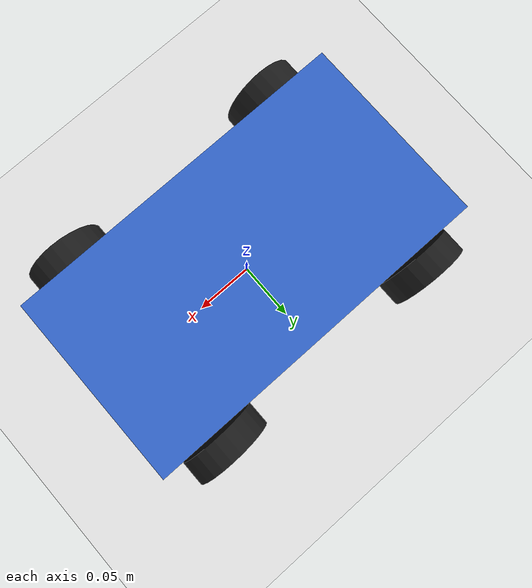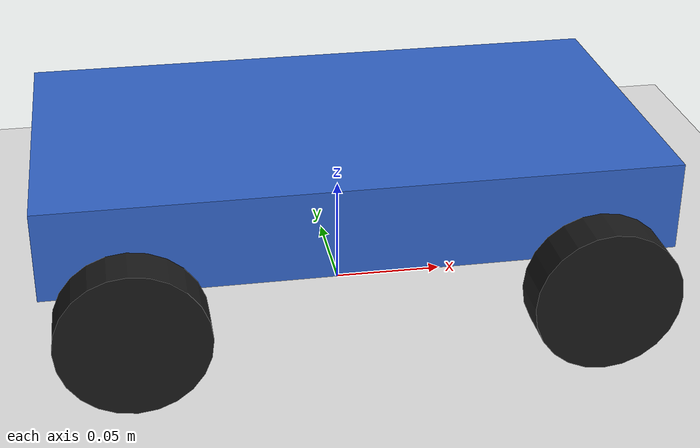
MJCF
<mujoco model="ackermann_robot">
  <compiler angle="radian"/>

  <option timestep="0.002" gravity="0 0 -9.81"/>

  <worldbody>
    <light name="top" pos="0 0 3" dir="0 0 -1" diffuse=".6 .6 .6" specular="0.1 0.1 0.1"/>
    <geom name="floor" pos="0 0 0" size="40 40 .1" type="plane" rgba="0.9 0.9 0.9 1"/>

    <!-- Chassis box: length=0.275, width=0.15, height=0.1 -->
    <!-- size uses half-dimensions -->
    <body name="chassis" pos="0 0 0.065">
      <geom name="chassis_geom" type="box" size="0.1375 0.075 0.02" rgba="0.2 0.4 0.8 1" mass="10"/>

      <!-- Rear wheels (with encoders) at x=-0.12, y=±0.06, z=0.065; radius=0.065 -->
      <body name="rear_left" pos="-0.10 0.09 -0.03">
        <geom name="rear_left_wheel_geom" type="cylinder" size="0.0325 0.01" euler="1.57079632679 0 0" rgba="0.1 0.1 0.1 1"/>
        <joint name="rear_left_wheel" type="hinge" axis="0 1 0" damping="0.05"/>
      </body>
      <body name="rear_right" pos="-0.10 -0.09 -0.03">
        <geom name="rear_right_wheel_geom" type="cylinder" size="0.0325 0.01" euler="1.57079632679 0 0" rgba="0.1 0.1 0.1 1"/>
        <joint name="rear_right_wheel" type="hinge" axis="0 1 0" damping="0.05"/>
      </body>

      <!-- Front wheels with steering at x=+0.12, y=±0.06, z=0.065; radius=0.065 -->
      <body name="front_left_steer" pos="0.10 0.09 -0.03">
        <inertial pos="0 0 0" mass="0.1" diaginertia="1e-4 1e-4 1e-4"/>
        <joint name="front_left_steer" type="hinge" axis="0 1 0" range="-0.6 0.6" damping="0.05"/>
        <body name="front_left" pos="0 0 0">
          <geom name="front_left_wheel_geom" type="cylinder" size="0.0325 0.01" euler="1.57079632679 0 0" rgba="0.1 0.1 0.1 1"/>
          <joint name="front_left_wheel" type="hinge" axis="0 1 0" damping="0.05"/>
        </body>
      </body>
      <body name="front_right_steer" pos="0.10 -0.09 -0.03">
        <inertial pos="0 0 0" mass="0.1" diaginertia="1e-4 1e-4 1e-4"/>
        <joint name="front_right_steer" type="hinge" axis="0 1 0" range="-0.6 0.6" damping="0.05"/>
        <body name="front_right" pos="0 0 0">
          <geom name="front_right_wheel_geom" type="cylinder" size="0.0325 0.01" euler="1.57079632679 0 0" rgba="0.1 0.1 0.1 1"/>
          <joint name="front_right_wheel" type="hinge" axis="0 1 0" damping="0.05"/>
        </body>
      </body>
    </body>
  </worldbody>

  <sensor>
    <!-- Encoders for rear wheel rotation -->
    <jointpos name="rear_left_encoder" joint="rear_left_wheel"/>
    <jointpos name="rear_right_encoder" joint="rear_right_wheel"/>

    <!-- Optional: expose front steering angles and wheel spins too -->
    <jointpos name="front_left_steer_angle" joint="front_left_steer"/>
    <jointpos name="front_right_steer_angle" joint="front_right_steer"/>
    <jointpos name="front_left_wheel_pos" joint="front_left_wheel"/>
    <jointpos name="front_right_wheel_pos" joint="front_right_wheel"/>
  </sensor>

  <actuator>
    <!-- Steering position control -->
    <position name="front_left_steer_act" joint="front_left_steer" kp="100" kv="10" forcerange="-50 50"/>
    <position name="front_right_steer_act" joint="front_right_steer" kp="100" kv="10" forcerange="-50 50"/>

    <!-- Rear wheel drive (velocity control) -->
    <velocity name="rear_left_drive" joint="rear_left_wheel" kv="10" forcerange="-100 100"/>
    <velocity name="rear_right_drive" joint="rear_right_wheel" kv="10" forcerange="-100 100"/>
  </actuator>
</mujoco>
